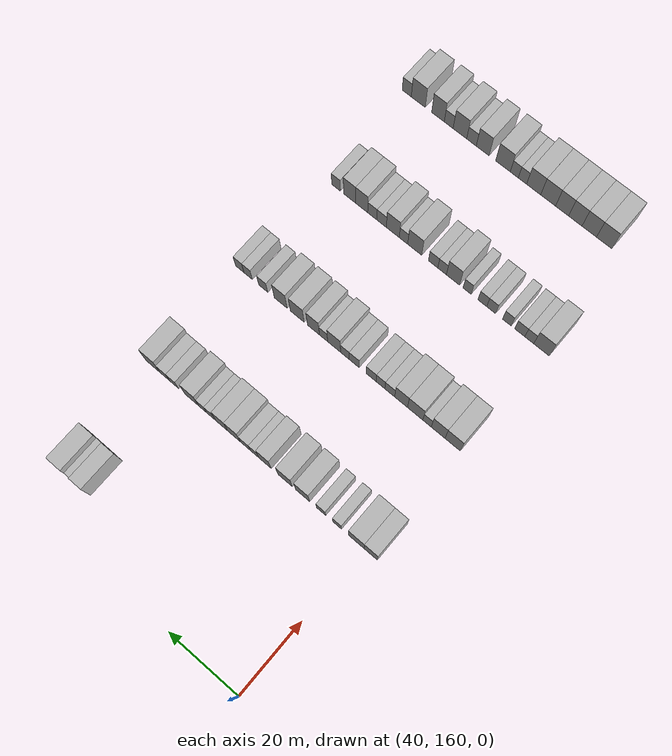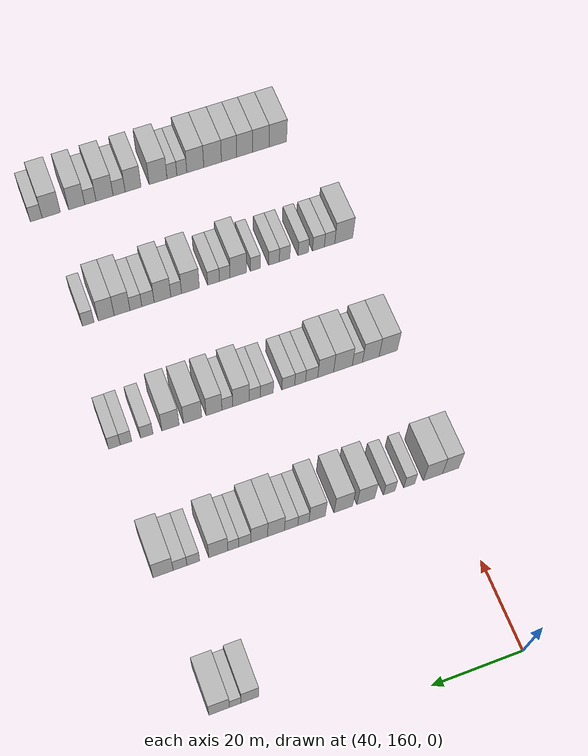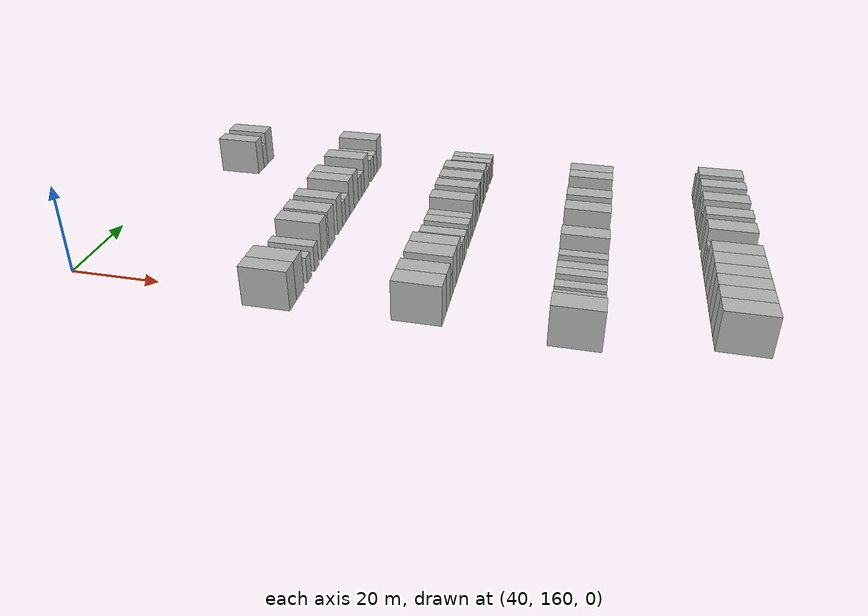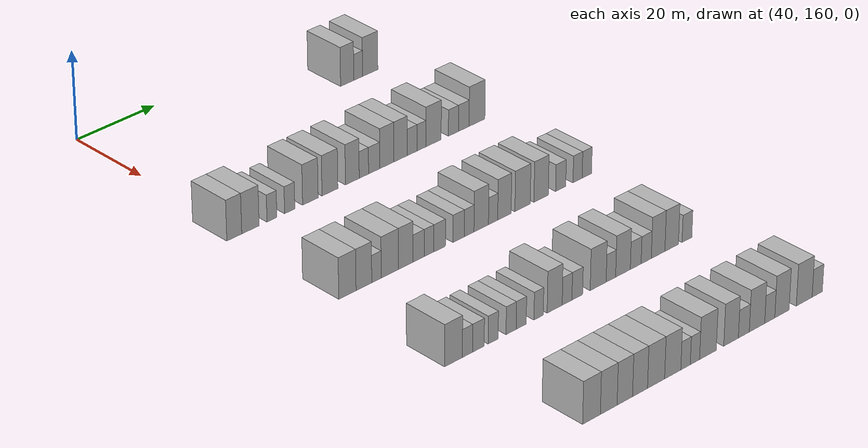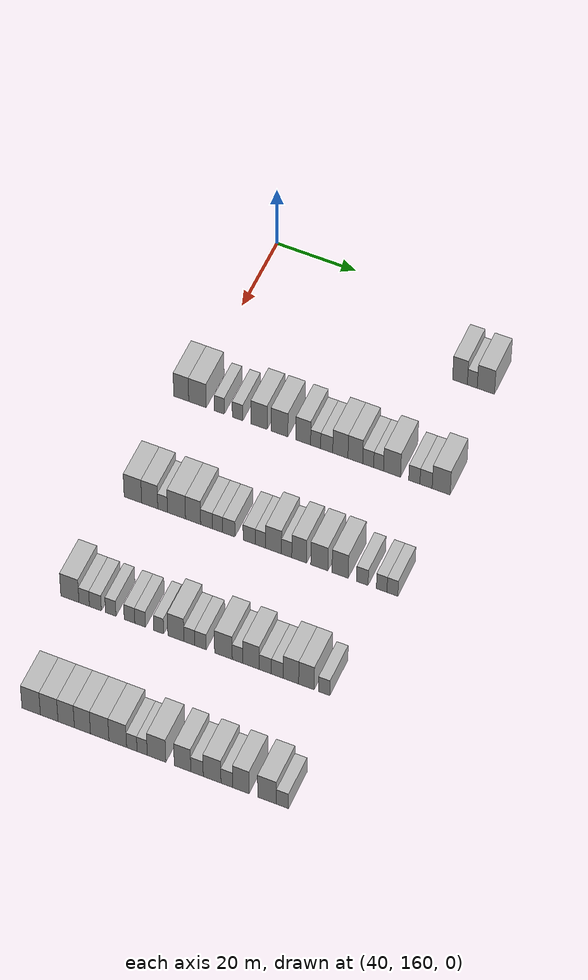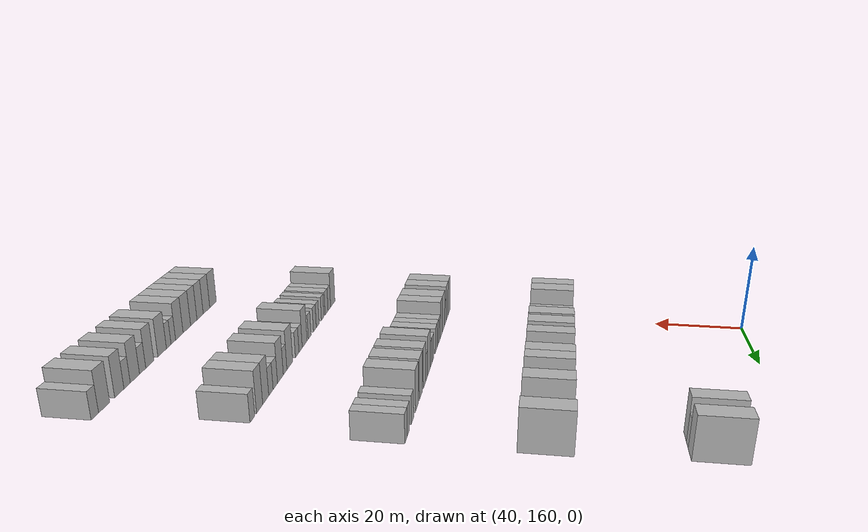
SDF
<sdf version="1.6">
 <world name="default">
  <model name="building_401">
   <static>1</static>
   <pose>55.0000 214.5117 0 0.000000 0.000000 0.000000</pose>
   <link name="link">
    <pose>0 0 4.50 0 0 0</pose>
    <collision name="collision"><geometry><box><size>10.0000 3.6637 9.0000</size></box></geometry></collision>
    <visual name="visual">
     <cast_shadows>0</cast_shadows>
     <geometry><box><size>10.0000 3.6637 9.0000</size></box></geometry>
     <material>
      <script>
       <uri>model://HANNAS_wall/materials/scripts</uri>
       <uri>model://HANNAS_wall/materials/textures</uri>
       <name>vrc/HANNAS_wall</name>
      </script>
     </material>
    </visual>
   </link>
  </model>
  <model name="building_402">
   <static>1</static>
   <pose>55.0000 217.5615 0 0.000000 0.000000 0.000000</pose>
   <link name="link">
    <pose>0 0 3.00 0 0 0</pose>
    <collision name="collision"><geometry><box><size>10.0000 2.4358 6.0000</size></box></geometry></collision>
    <visual name="visual">
     <cast_shadows>0</cast_shadows>
     <geometry><box><size>10.0000 2.4358 6.0000</size></box></geometry>
     <material>
      <script>
       <uri>model://HANNAS_wall/materials/scripts</uri>
       <uri>model://HANNAS_wall/materials/textures</uri>
       <name>vrc/HANNAS_wall</name>
      </script>
     </material>
    </visual>
   </link>
  </model>
  <model name="building_403">
   <static>1</static>
   <pose>55.0000 220.9207 0 0.000000 0.000000 0.000000</pose>
   <link name="link">
    <pose>0 0 4.50 0 0 0</pose>
    <collision name="collision"><geometry><box><size>10.0000 4.2827 9.0000</size></box></geometry></collision>
    <visual name="visual">
     <cast_shadows>0</cast_shadows>
     <geometry><box><size>10.0000 4.2827 9.0000</size></box></geometry>
     <material>
      <script>
       <uri>model://HANNAS_wall/materials/scripts</uri>
       <uri>model://HANNAS_wall/materials/textures</uri>
       <name>vrc/HANNAS_wall</name>
      </script>
     </material>
    </visual>
   </link>
  </model>
  <model name="building_611">
   <static>1</static>
   <pose>85.0000 157.9519 0 0.000000 0.000000 0.000000</pose>
   <link name="link">
    <pose>0 0 4.50 0 0 0</pose>
    <collision name="collision"><geometry><box><size>10.0000 3.7544 9.0000</size></box></geometry></collision>
    <visual name="visual">
     <cast_shadows>0</cast_shadows>
     <geometry><box><size>10.0000 3.7544 9.0000</size></box></geometry>
     <material>
      <script>
       <uri>model://HANNAS_wall/materials/scripts</uri>
       <uri>model://HANNAS_wall/materials/textures</uri>
       <name>vrc/HANNAS_wall</name>
      </script>
     </material>
    </visual>
   </link>
  </model>
  <model name="building_612">
   <static>1</static>
   <pose>85.0000 162.0266 0 0.000000 0.000000 0.000000</pose>
   <link name="link">
    <pose>0 0 4.50 0 0 0</pose>
    <collision name="collision"><geometry><box><size>10.0000 4.3950 9.0000</size></box></geometry></collision>
    <visual name="visual">
     <cast_shadows>0</cast_shadows>
     <geometry><box><size>10.0000 4.3950 9.0000</size></box></geometry>
     <material>
      <script>
       <uri>model://HANNAS_wall/materials/scripts</uri>
       <uri>model://HANNAS_wall/materials/textures</uri>
       <name>vrc/HANNAS_wall</name>
      </script>
     </material>
    </visual>
   </link>
  </model>
  <model name="building_613">
   <static>1</static>
   <pose>85.0000 167.4840 0 0.000000 0.000000 0.000000</pose>
   <link name="link">
    <pose>0 0 3.00 0 0 0</pose>
    <collision name="collision"><geometry><box><size>10.0000 2.5198 6.0000</size></box></geometry></collision>
    <visual name="visual">
     <cast_shadows>0</cast_shadows>
     <geometry><box><size>10.0000 2.5198 6.0000</size></box></geometry>
     <material>
      <script>
       <uri>model://HANNAS_wall/materials/scripts</uri>
       <uri>model://HANNAS_wall/materials/textures</uri>
       <name>vrc/HANNAS_wall</name>
      </script>
     </material>
    </visual>
   </link>
  </model>
  <model name="building_614">
   <static>1</static>
   <pose>85.0000 172.0618 0 0.000000 0.000000 0.000000</pose>
   <link name="link">
    <pose>0 0 3.00 0 0 0</pose>
    <collision name="collision"><geometry><box><size>10.0000 2.6360 6.0000</size></box></geometry></collision>
    <visual name="visual">
     <cast_shadows>0</cast_shadows>
     <geometry><box><size>10.0000 2.6360 6.0000</size></box></geometry>
     <material>
      <script>
       <uri>model://HANNAS_wall/materials/scripts</uri>
       <uri>model://HANNAS_wall/materials/textures</uri>
       <name>vrc/HANNAS_wall</name>
      </script>
     </material>
    </visual>
   </link>
  </model>
  <model name="building_615">
   <static>1</static>
   <pose>85.0000 177.3985 0 0.000000 0.000000 0.000000</pose>
   <link name="link">
    <pose>0 0 4.50 0 0 0</pose>
    <collision name="collision"><geometry><box><size>10.0000 4.0372 9.0000</size></box></geometry></collision>
    <visual name="visual">
     <cast_shadows>0</cast_shadows>
     <geometry><box><size>10.0000 4.0372 9.0000</size></box></geometry>
     <material>
      <script>
       <uri>model://HANNAS_wall/materials/scripts</uri>
       <uri>model://HANNAS_wall/materials/textures</uri>
       <name>vrc/HANNAS_wall</name>
      </script>
     </material>
    </visual>
   </link>
  </model>
  <model name="building_616">
   <static>1</static>
   <pose>85.0000 182.4982 0 0.000000 0.000000 0.000000</pose>
   <link name="link">
    <pose>0 0 4.50 0 0 0</pose>
    <collision name="collision"><geometry><box><size>10.0000 4.1622 9.0000</size></box></geometry></collision>
    <visual name="visual">
     <cast_shadows>0</cast_shadows>
     <geometry><box><size>10.0000 4.1622 9.0000</size></box></geometry>
     <material>
      <script>
       <uri>model://HANNAS_wall/materials/scripts</uri>
       <uri>model://HANNAS_wall/materials/textures</uri>
       <name>vrc/HANNAS_wall</name>
      </script>
     </material>
    </visual>
   </link>
  </model>
  <model name="building_617">
   <static>1</static>
   <pose>85.0000 188.3986 0 0.000000 0.000000 0.000000</pose>
   <link name="link">
    <pose>0 0 4.50 0 0 0</pose>
    <collision name="collision"><geometry><box><size>10.0000 3.6386 9.0000</size></box></geometry></collision>
    <visual name="visual">
     <cast_shadows>0</cast_shadows>
     <geometry><box><size>10.0000 3.6386 9.0000</size></box></geometry>
     <material>
      <script>
       <uri>model://HANNAS_wall/materials/scripts</uri>
       <uri>model://HANNAS_wall/materials/textures</uri>
       <name>vrc/HANNAS_wall</name>
      </script>
     </material>
    </visual>
   </link>
  </model>
  <model name="building_618">
   <static>1</static>
   <pose>85.0000 191.4631 0 0.000000 0.000000 0.000000</pose>
   <link name="link">
    <pose>0 0 3.00 0 0 0</pose>
    <collision name="collision"><geometry><box><size>10.0000 2.4904 6.0000</size></box></geometry></collision>
    <visual name="visual">
     <cast_shadows>0</cast_shadows>
     <geometry><box><size>10.0000 2.4904 6.0000</size></box></geometry>
     <material>
      <script>
       <uri>model://HANNAS_wall/materials/scripts</uri>
       <uri>model://HANNAS_wall/materials/textures</uri>
       <name>vrc/HANNAS_wall</name>
      </script>
     </material>
    </visual>
   </link>
  </model>
  <model name="building_619">
   <static>1</static>
   <pose>85.0000 194.1972 0 0.000000 0.000000 0.000000</pose>
   <link name="link">
    <pose>0 0 3.00 0 0 0</pose>
    <collision name="collision"><geometry><box><size>10.0000 2.9778 6.0000</size></box></geometry></collision>
    <visual name="visual">
     <cast_shadows>0</cast_shadows>
     <geometry><box><size>10.0000 2.9778 6.0000</size></box></geometry>
     <material>
      <script>
       <uri>model://HANNAS_wall/materials/scripts</uri>
       <uri>model://HANNAS_wall/materials/textures</uri>
       <name>vrc/HANNAS_wall</name>
      </script>
     </material>
    </visual>
   </link>
  </model>
  <model name="building_620">
   <static>1</static>
   <pose>85.0000 197.5602 0 0.000000 0.000000 0.000000</pose>
   <link name="link">
    <pose>0 0 4.50 0 0 0</pose>
    <collision name="collision"><geometry><box><size>10.0000 3.7483 9.0000</size></box></geometry></collision>
    <visual name="visual">
     <cast_shadows>0</cast_shadows>
     <geometry><box><size>10.0000 3.7483 9.0000</size></box></geometry>
     <material>
      <script>
       <uri>model://HANNAS_wall/materials/scripts</uri>
       <uri>model://HANNAS_wall/materials/textures</uri>
       <name>vrc/HANNAS_wall</name>
      </script>
     </material>
    </visual>
   </link>
  </model>
  <model name="building_621">
   <static>1</static>
   <pose>85.0000 201.2540 0 0.000000 0.000000 0.000000</pose>
   <link name="link">
    <pose>0 0 4.50 0 0 0</pose>
    <collision name="collision"><geometry><box><size>10.0000 3.6392 9.0000</size></box></geometry></collision>
    <visual name="visual">
     <cast_shadows>0</cast_shadows>
     <geometry><box><size>10.0000 3.6392 9.0000</size></box></geometry>
     <material>
      <script>
       <uri>model://HANNAS_wall/materials/scripts</uri>
       <uri>model://HANNAS_wall/materials/textures</uri>
       <name>vrc/HANNAS_wall</name>
      </script>
     </material>
    </visual>
   </link>
  </model>
  <model name="building_622">
   <static>1</static>
   <pose>85.0000 204.4250 0 0.000000 0.000000 0.000000</pose>
   <link name="link">
    <pose>0 0 3.00 0 0 0</pose>
    <collision name="collision"><geometry><box><size>10.0000 2.7029 6.0000</size></box></geometry></collision>
    <visual name="visual">
     <cast_shadows>0</cast_shadows>
     <geometry><box><size>10.0000 2.7029 6.0000</size></box></geometry>
     <material>
      <script>
       <uri>model://HANNAS_wall/materials/scripts</uri>
       <uri>model://HANNAS_wall/materials/textures</uri>
       <name>vrc/HANNAS_wall</name>
      </script>
     </material>
    </visual>
   </link>
  </model>
  <model name="building_623">
   <static>1</static>
   <pose>85.0000 206.9836 0 0.000000 0.000000 0.000000</pose>
   <link name="link">
    <pose>0 0 3.00 0 0 0</pose>
    <collision name="collision"><geometry><box><size>10.0000 2.4144 6.0000</size></box></geometry></collision>
    <visual name="visual">
     <cast_shadows>0</cast_shadows>
     <geometry><box><size>10.0000 2.4144 6.0000</size></box></geometry>
     <material>
      <script>
       <uri>model://HANNAS_wall/materials/scripts</uri>
       <uri>model://HANNAS_wall/materials/textures</uri>
       <name>vrc/HANNAS_wall</name>
      </script>
     </material>
    </visual>
   </link>
  </model>
  <model name="building_624">
   <static>1</static>
   <pose>85.0000 210.2818 0 0.000000 0.000000 0.000000</pose>
   <link name="link">
    <pose>0 0 4.50 0 0 0</pose>
    <collision name="collision"><geometry><box><size>10.0000 4.1820 9.0000</size></box></geometry></collision>
    <visual name="visual">
     <cast_shadows>0</cast_shadows>
     <geometry><box><size>10.0000 4.1820 9.0000</size></box></geometry>
     <material>
      <script>
       <uri>model://HANNAS_wall/materials/scripts</uri>
       <uri>model://HANNAS_wall/materials/textures</uri>
       <name>vrc/HANNAS_wall</name>
      </script>
     </material>
    </visual>
   </link>
  </model>
  <model name="building_625">
   <static>1</static>
   <pose>85.0000 215.7468 0 0.000000 0.000000 0.000000</pose>
   <link name="link">
    <pose>0 0 3.00 0 0 0</pose>
    <collision name="collision"><geometry><box><size>10.0000 2.7480 6.0000</size></box></geometry></collision>
    <visual name="visual">
     <cast_shadows>0</cast_shadows>
     <geometry><box><size>10.0000 2.7480 6.0000</size></box></geometry>
     <material>
      <script>
       <uri>model://HANNAS_wall/materials/scripts</uri>
       <uri>model://HANNAS_wall/materials/textures</uri>
       <name>vrc/HANNAS_wall</name>
      </script>
     </material>
    </visual>
   </link>
  </model>
  <model name="building_626">
   <static>1</static>
   <pose>85.0000 218.6139 0 0.000000 0.000000 0.000000</pose>
   <link name="link">
    <pose>0 0 3.00 0 0 0</pose>
    <collision name="collision"><geometry><box><size>10.0000 2.9862 6.0000</size></box></geometry></collision>
    <visual name="visual">
     <cast_shadows>0</cast_shadows>
     <geometry><box><size>10.0000 2.9862 6.0000</size></box></geometry>
     <material>
      <script>
       <uri>model://HANNAS_wall/materials/scripts</uri>
       <uri>model://HANNAS_wall/materials/textures</uri>
       <name>vrc/HANNAS_wall</name>
      </script>
     </material>
    </visual>
   </link>
  </model>
  <model name="building_627">
   <static>1</static>
   <pose>85.0000 222.3025 0 0.000000 0.000000 0.000000</pose>
   <link name="link">
    <pose>0 0 4.50 0 0 0</pose>
    <collision name="collision"><geometry><box><size>10.0000 4.3910 9.0000</size></box></geometry></collision>
    <visual name="visual">
     <cast_shadows>0</cast_shadows>
     <geometry><box><size>10.0000 4.3910 9.0000</size></box></geometry>
     <material>
      <script>
       <uri>model://HANNAS_wall/materials/scripts</uri>
       <uri>model://HANNAS_wall/materials/textures</uri>
       <name>vrc/HANNAS_wall</name>
      </script>
     </material>
    </visual>
   </link>
  </model>
  <model name="building_832">
   <static>1</static>
   <pose>115.0000 159.6064 0 0.000000 0.000000 0.000000</pose>
   <link name="link">
    <pose>0 0 4.50 0 0 0</pose>
    <collision name="collision"><geometry><box><size>10.0000 4.3523 9.0000</size></box></geometry></collision>
    <visual name="visual">
     <cast_shadows>0</cast_shadows>
     <geometry><box><size>10.0000 4.3523 9.0000</size></box></geometry>
     <material>
      <script>
       <uri>model://HANNAS_wall/materials/scripts</uri>
       <uri>model://HANNAS_wall/materials/textures</uri>
       <name>vrc/HANNAS_wall</name>
      </script>
     </material>
    </visual>
   </link>
  </model>
  <model name="building_833">
   <static>1</static>
   <pose>115.0000 163.7664 0 0.000000 0.000000 0.000000</pose>
   <link name="link">
    <pose>0 0 4.50 0 0 0</pose>
    <collision name="collision"><geometry><box><size>10.0000 3.9676 9.0000</size></box></geometry></collision>
    <visual name="visual">
     <cast_shadows>0</cast_shadows>
     <geometry><box><size>10.0000 3.9676 9.0000</size></box></geometry>
     <material>
      <script>
       <uri>model://HANNAS_wall/materials/scripts</uri>
       <uri>model://HANNAS_wall/materials/textures</uri>
       <name>vrc/HANNAS_wall</name>
      </script>
     </material>
    </visual>
   </link>
  </model>
  <model name="building_834">
   <static>1</static>
   <pose>115.0000 166.9560 0 0.000000 0.000000 0.000000</pose>
   <link name="link">
    <pose>0 0 3.00 0 0 0</pose>
    <collision name="collision"><geometry><box><size>10.0000 2.4116 6.0000</size></box></geometry></collision>
    <visual name="visual">
     <cast_shadows>0</cast_shadows>
     <geometry><box><size>10.0000 2.4116 6.0000</size></box></geometry>
     <material>
      <script>
       <uri>model://HANNAS_wall/materials/scripts</uri>
       <uri>model://HANNAS_wall/materials/textures</uri>
       <name>vrc/HANNAS_wall</name>
      </script>
     </material>
    </visual>
   </link>
  </model>
  <model name="building_835">
   <static>1</static>
   <pose>115.0000 170.3783 0 0.000000 0.000000 0.000000</pose>
   <link name="link">
    <pose>0 0 4.50 0 0 0</pose>
    <collision name="collision"><geometry><box><size>10.0000 4.4330 9.0000</size></box></geometry></collision>
    <visual name="visual">
     <cast_shadows>0</cast_shadows>
     <geometry><box><size>10.0000 4.4330 9.0000</size></box></geometry>
     <material>
      <script>
       <uri>model://HANNAS_wall/materials/scripts</uri>
       <uri>model://HANNAS_wall/materials/textures</uri>
       <name>vrc/HANNAS_wall</name>
      </script>
     </material>
    </visual>
   </link>
  </model>
  <model name="building_836">
   <static>1</static>
   <pose>115.0000 174.4651 0 0.000000 0.000000 0.000000</pose>
   <link name="link">
    <pose>0 0 4.50 0 0 0</pose>
    <collision name="collision"><geometry><box><size>10.0000 3.7405 9.0000</size></box></geometry></collision>
    <visual name="visual">
     <cast_shadows>0</cast_shadows>
     <geometry><box><size>10.0000 3.7405 9.0000</size></box></geometry>
     <material>
      <script>
       <uri>model://HANNAS_wall/materials/scripts</uri>
       <uri>model://HANNAS_wall/materials/textures</uri>
       <name>vrc/HANNAS_wall</name>
      </script>
     </material>
    </visual>
   </link>
  </model>
  <model name="building_837">
   <static>1</static>
   <pose>115.0000 177.7722 0 0.000000 0.000000 0.000000</pose>
   <link name="link">
    <pose>0 0 3.00 0 0 0</pose>
    <collision name="collision"><geometry><box><size>10.0000 2.8737 6.0000</size></box></geometry></collision>
    <visual name="visual">
     <cast_shadows>0</cast_shadows>
     <geometry><box><size>10.0000 2.8737 6.0000</size></box></geometry>
     <material>
      <script>
       <uri>model://HANNAS_wall/materials/scripts</uri>
       <uri>model://HANNAS_wall/materials/textures</uri>
       <name>vrc/HANNAS_wall</name>
      </script>
     </material>
    </visual>
   </link>
  </model>
  <model name="building_838">
   <static>1</static>
   <pose>115.0000 180.4866 0 0.000000 0.000000 0.000000</pose>
   <link name="link">
    <pose>0 0 3.00 0 0 0</pose>
    <collision name="collision"><geometry><box><size>10.0000 2.5551 6.0000</size></box></geometry></collision>
    <visual name="visual">
     <cast_shadows>0</cast_shadows>
     <geometry><box><size>10.0000 2.5551 6.0000</size></box></geometry>
     <material>
      <script>
       <uri>model://HANNAS_wall/materials/scripts</uri>
       <uri>model://HANNAS_wall/materials/textures</uri>
       <name>vrc/HANNAS_wall</name>
      </script>
     </material>
    </visual>
   </link>
  </model>
  <model name="building_839">
   <static>1</static>
   <pose>115.0000 183.2599 0 0.000000 0.000000 0.000000</pose>
   <link name="link">
    <pose>0 0 3.00 0 0 0</pose>
    <collision name="collision"><geometry><box><size>10.0000 2.9916 6.0000</size></box></geometry></collision>
    <visual name="visual">
     <cast_shadows>0</cast_shadows>
     <geometry><box><size>10.0000 2.9916 6.0000</size></box></geometry>
     <material>
      <script>
       <uri>model://HANNAS_wall/materials/scripts</uri>
       <uri>model://HANNAS_wall/materials/textures</uri>
       <name>vrc/HANNAS_wall</name>
      </script>
     </material>
    </visual>
   </link>
  </model>
  <model name="building_840">
   <static>1</static>
   <pose>115.0000 188.2432 0 0.000000 0.000000 0.000000</pose>
   <link name="link">
    <pose>0 0 3.00 0 0 0</pose>
    <collision name="collision"><geometry><box><size>10.0000 2.9750 6.0000</size></box></geometry></collision>
    <visual name="visual">
     <cast_shadows>0</cast_shadows>
     <geometry><box><size>10.0000 2.9750 6.0000</size></box></geometry>
     <material>
      <script>
       <uri>model://HANNAS_wall/materials/scripts</uri>
       <uri>model://HANNAS_wall/materials/textures</uri>
       <name>vrc/HANNAS_wall</name>
      </script>
     </material>
    </visual>
   </link>
  </model>
  <model name="building_841">
   <static>1</static>
   <pose>115.0000 191.0118 0 0.000000 0.000000 0.000000</pose>
   <link name="link">
    <pose>0 0 3.00 0 0 0</pose>
    <collision name="collision"><geometry><box><size>10.0000 2.5622 6.0000</size></box></geometry></collision>
    <visual name="visual">
     <cast_shadows>0</cast_shadows>
     <geometry><box><size>10.0000 2.5622 6.0000</size></box></geometry>
     <material>
      <script>
       <uri>model://HANNAS_wall/materials/scripts</uri>
       <uri>model://HANNAS_wall/materials/textures</uri>
       <name>vrc/HANNAS_wall</name>
      </script>
     </material>
    </visual>
   </link>
  </model>
  <model name="building_842">
   <static>1</static>
   <pose>115.0000 194.2278 0 0.000000 0.000000 0.000000</pose>
   <link name="link">
    <pose>0 0 4.50 0 0 0</pose>
    <collision name="collision"><geometry><box><size>10.0000 3.8698 9.0000</size></box></geometry></collision>
    <visual name="visual">
     <cast_shadows>0</cast_shadows>
     <geometry><box><size>10.0000 3.8698 9.0000</size></box></geometry>
     <material>
      <script>
       <uri>model://HANNAS_wall/materials/scripts</uri>
       <uri>model://HANNAS_wall/materials/textures</uri>
       <name>vrc/HANNAS_wall</name>
      </script>
     </material>
    </visual>
   </link>
  </model>
  <model name="building_843">
   <static>1</static>
   <pose>115.0000 197.4004 0 0.000000 0.000000 0.000000</pose>
   <link name="link">
    <pose>0 0 3.00 0 0 0</pose>
    <collision name="collision"><geometry><box><size>10.0000 2.4754 6.0000</size></box></geometry></collision>
    <visual name="visual">
     <cast_shadows>0</cast_shadows>
     <geometry><box><size>10.0000 2.4754 6.0000</size></box></geometry>
     <material>
      <script>
       <uri>model://HANNAS_wall/materials/scripts</uri>
       <uri>model://HANNAS_wall/materials/textures</uri>
       <name>vrc/HANNAS_wall</name>
      </script>
     </material>
    </visual>
   </link>
  </model>
  <model name="building_844">
   <static>1</static>
   <pose>115.0000 200.4506 0 0.000000 0.000000 0.000000</pose>
   <link name="link">
    <pose>0 0 4.50 0 0 0</pose>
    <collision name="collision"><geometry><box><size>10.0000 3.6250 9.0000</size></box></geometry></collision>
    <visual name="visual">
     <cast_shadows>0</cast_shadows>
     <geometry><box><size>10.0000 3.6250 9.0000</size></box></geometry>
     <material>
      <script>
       <uri>model://HANNAS_wall/materials/scripts</uri>
       <uri>model://HANNAS_wall/materials/textures</uri>
       <name>vrc/HANNAS_wall</name>
      </script>
     </material>
    </visual>
   </link>
  </model>
  <model name="building_845">
   <static>1</static>
   <pose>115.0000 205.3513 0 0.000000 0.000000 0.000000</pose>
   <link name="link">
    <pose>0 0 4.50 0 0 0</pose>
    <collision name="collision"><geometry><box><size>10.0000 4.1764 9.0000</size></box></geometry></collision>
    <visual name="visual">
     <cast_shadows>0</cast_shadows>
     <geometry><box><size>10.0000 4.1764 9.0000</size></box></geometry>
     <material>
      <script>
       <uri>model://HANNAS_wall/materials/scripts</uri>
       <uri>model://HANNAS_wall/materials/textures</uri>
       <name>vrc/HANNAS_wall</name>
      </script>
     </material>
    </visual>
   </link>
  </model>
  <model name="building_846">
   <static>1</static>
   <pose>115.0000 210.4061 0 0.000000 0.000000 0.000000</pose>
   <link name="link">
    <pose>0 0 4.50 0 0 0</pose>
    <collision name="collision"><geometry><box><size>10.0000 3.9333 9.0000</size></box></geometry></collision>
    <visual name="visual">
     <cast_shadows>0</cast_shadows>
     <geometry><box><size>10.0000 3.9333 9.0000</size></box></geometry>
     <material>
      <script>
       <uri>model://HANNAS_wall/materials/scripts</uri>
       <uri>model://HANNAS_wall/materials/textures</uri>
       <name>vrc/HANNAS_wall</name>
      </script>
     </material>
    </visual>
   </link>
  </model>
  <model name="building_847">
   <static>1</static>
   <pose>115.0000 215.7771 0 0.000000 0.000000 0.000000</pose>
   <link name="link">
    <pose>0 0 3.00 0 0 0</pose>
    <collision name="collision"><geometry><box><size>10.0000 2.8086 6.0000</size></box></geometry></collision>
    <visual name="visual">
     <cast_shadows>0</cast_shadows>
     <geometry><box><size>10.0000 2.8086 6.0000</size></box></geometry>
     <material>
      <script>
       <uri>model://HANNAS_wall/materials/scripts</uri>
       <uri>model://HANNAS_wall/materials/textures</uri>
       <name>vrc/HANNAS_wall</name>
      </script>
     </material>
    </visual>
   </link>
  </model>
  <model name="building_848">
   <static>1</static>
   <pose>115.0000 220.4615 0 0.000000 0.000000 0.000000</pose>
   <link name="link">
    <pose>0 0 3.00 0 0 0</pose>
    <collision name="collision"><geometry><box><size>10.0000 2.5602 6.0000</size></box></geometry></collision>
    <visual name="visual">
     <cast_shadows>0</cast_shadows>
     <geometry><box><size>10.0000 2.5602 6.0000</size></box></geometry>
     <material>
      <script>
       <uri>model://HANNAS_wall/materials/scripts</uri>
       <uri>model://HANNAS_wall/materials/textures</uri>
       <name>vrc/HANNAS_wall</name>
      </script>
     </material>
    </visual>
   </link>
  </model>
  <model name="building_849">
   <static>1</static>
   <pose>115.0000 223.0526 0 0.000000 0.000000 0.000000</pose>
   <link name="link">
    <pose>0 0 3.00 0 0 0</pose>
    <collision name="collision"><geometry><box><size>10.0000 2.6220 6.0000</size></box></geometry></collision>
    <visual name="visual">
     <cast_shadows>0</cast_shadows>
     <geometry><box><size>10.0000 2.6220 6.0000</size></box></geometry>
     <material>
      <script>
       <uri>model://HANNAS_wall/materials/scripts</uri>
       <uri>model://HANNAS_wall/materials/textures</uri>
       <name>vrc/HANNAS_wall</name>
      </script>
     </material>
    </visual>
   </link>
  </model>
  <model name="building_1072">
   <static>1</static>
   <pose>145.0000 158.0233 0 0.000000 0.000000 0.000000</pose>
   <link name="link">
    <pose>0 0 4.50 0 0 0</pose>
    <collision name="collision"><geometry><box><size>10.0000 4.4447 9.0000</size></box></geometry></collision>
    <visual name="visual">
     <cast_shadows>0</cast_shadows>
     <geometry><box><size>10.0000 4.4447 9.0000</size></box></geometry>
     <material>
      <script>
       <uri>model://HANNAS_wall/materials/scripts</uri>
       <uri>model://HANNAS_wall/materials/textures</uri>
       <name>vrc/HANNAS_wall</name>
      </script>
     </material>
    </visual>
   </link>
  </model>
  <model name="building_1073">
   <static>1</static>
   <pose>145.0000 161.5259 0 0.000000 0.000000 0.000000</pose>
   <link name="link">
    <pose>0 0 3.00 0 0 0</pose>
    <collision name="collision"><geometry><box><size>10.0000 2.5606 6.0000</size></box></geometry></collision>
    <visual name="visual">
     <cast_shadows>0</cast_shadows>
     <geometry><box><size>10.0000 2.5606 6.0000</size></box></geometry>
     <material>
      <script>
       <uri>model://HANNAS_wall/materials/scripts</uri>
       <uri>model://HANNAS_wall/materials/textures</uri>
       <name>vrc/HANNAS_wall</name>
      </script>
     </material>
    </visual>
   </link>
  </model>
  <model name="building_1074">
   <static>1</static>
   <pose>145.0000 164.2708 0 0.000000 0.000000 0.000000</pose>
   <link name="link">
    <pose>0 0 3.00 0 0 0</pose>
    <collision name="collision"><geometry><box><size>10.0000 2.9294 6.0000</size></box></geometry></collision>
    <visual name="visual">
     <cast_shadows>0</cast_shadows>
     <geometry><box><size>10.0000 2.9294 6.0000</size></box></geometry>
     <material>
      <script>
       <uri>model://HANNAS_wall/materials/scripts</uri>
       <uri>model://HANNAS_wall/materials/textures</uri>
       <name>vrc/HANNAS_wall</name>
      </script>
     </material>
    </visual>
   </link>
  </model>
  <model name="building_1075">
   <static>1</static>
   <pose>145.0000 168.0119 0 0.000000 0.000000 0.000000</pose>
   <link name="link">
    <pose>0 0 3.00 0 0 0</pose>
    <collision name="collision"><geometry><box><size>10.0000 2.5528 6.0000</size></box></geometry></collision>
    <visual name="visual">
     <cast_shadows>0</cast_shadows>
     <geometry><box><size>10.0000 2.5528 6.0000</size></box></geometry>
     <material>
      <script>
       <uri>model://HANNAS_wall/materials/scripts</uri>
       <uri>model://HANNAS_wall/materials/textures</uri>
       <name>vrc/HANNAS_wall</name>
      </script>
     </material>
    </visual>
   </link>
  </model>
  <model name="building_1076">
   <static>1</static>
   <pose>145.0000 172.5833 0 0.000000 0.000000 0.000000</pose>
   <link name="link">
    <pose>0 0 3.00 0 0 0</pose>
    <collision name="collision"><geometry><box><size>10.0000 2.5899 6.0000</size></box></geometry></collision>
    <visual name="visual">
     <cast_shadows>0</cast_shadows>
     <geometry><box><size>10.0000 2.5899 6.0000</size></box></geometry>
     <material>
      <script>
       <uri>model://HANNAS_wall/materials/scripts</uri>
       <uri>model://HANNAS_wall/materials/textures</uri>
       <name>vrc/HANNAS_wall</name>
      </script>
     </material>
    </visual>
   </link>
  </model>
  <model name="building_1077">
   <static>1</static>
   <pose>145.0000 175.1761 0 0.000000 0.000000 0.000000</pose>
   <link name="link">
    <pose>0 0 3.00 0 0 0</pose>
    <collision name="collision"><geometry><box><size>10.0000 2.5956 6.0000</size></box></geometry></collision>
    <visual name="visual">
     <cast_shadows>0</cast_shadows>
     <geometry><box><size>10.0000 2.5956 6.0000</size></box></geometry>
     <material>
      <script>
       <uri>model://HANNAS_wall/materials/scripts</uri>
       <uri>model://HANNAS_wall/materials/textures</uri>
       <name>vrc/HANNAS_wall</name>
      </script>
     </material>
    </visual>
   </link>
  </model>
  <model name="building_1078">
   <static>1</static>
   <pose>145.0000 179.6835 0 0.000000 0.000000 0.000000</pose>
   <link name="link">
    <pose>0 0 3.00 0 0 0</pose>
    <collision name="collision"><geometry><box><size>10.0000 2.4192 6.0000</size></box></geometry></collision>
    <visual name="visual">
     <cast_shadows>0</cast_shadows>
     <geometry><box><size>10.0000 2.4192 6.0000</size></box></geometry>
     <material>
      <script>
       <uri>model://HANNAS_wall/materials/scripts</uri>
       <uri>model://HANNAS_wall/materials/textures</uri>
       <name>vrc/HANNAS_wall</name>
      </script>
     </material>
    </visual>
   </link>
  </model>
  <model name="building_1079">
   <static>1</static>
   <pose>145.0000 183.8589 0 0.000000 0.000000 0.000000</pose>
   <link name="link">
    <pose>0 0 4.50 0 0 0</pose>
    <collision name="collision"><geometry><box><size>10.0000 3.9317 9.0000</size></box></geometry></collision>
    <visual name="visual">
     <cast_shadows>0</cast_shadows>
     <geometry><box><size>10.0000 3.9317 9.0000</size></box></geometry>
     <material>
      <script>
       <uri>model://HANNAS_wall/materials/scripts</uri>
       <uri>model://HANNAS_wall/materials/textures</uri>
       <name>vrc/HANNAS_wall</name>
      </script>
     </material>
    </visual>
   </link>
  </model>
  <model name="building_1080">
   <static>1</static>
   <pose>145.0000 187.1050 0 0.000000 0.000000 0.000000</pose>
   <link name="link">
    <pose>0 0 3.00 0 0 0</pose>
    <collision name="collision"><geometry><box><size>10.0000 2.5604 6.0000</size></box></geometry></collision>
    <visual name="visual">
     <cast_shadows>0</cast_shadows>
     <geometry><box><size>10.0000 2.5604 6.0000</size></box></geometry>
     <material>
      <script>
       <uri>model://HANNAS_wall/materials/scripts</uri>
       <uri>model://HANNAS_wall/materials/textures</uri>
       <name>vrc/HANNAS_wall</name>
      </script>
     </material>
    </visual>
   </link>
  </model>
  <model name="building_1081">
   <static>1</static>
   <pose>145.0000 189.7967 0 0.000000 0.000000 0.000000</pose>
   <link name="link">
    <pose>0 0 3.00 0 0 0</pose>
    <collision name="collision"><geometry><box><size>10.0000 2.8230 6.0000</size></box></geometry></collision>
    <visual name="visual">
     <cast_shadows>0</cast_shadows>
     <geometry><box><size>10.0000 2.8230 6.0000</size></box></geometry>
     <material>
      <script>
       <uri>model://HANNAS_wall/materials/scripts</uri>
       <uri>model://HANNAS_wall/materials/textures</uri>
       <name>vrc/HANNAS_wall</name>
      </script>
     </material>
    </visual>
   </link>
  </model>
  <model name="building_1082">
   <static>1</static>
   <pose>145.0000 195.3401 0 0.000000 0.000000 0.000000</pose>
   <link name="link">
    <pose>0 0 4.50 0 0 0</pose>
    <collision name="collision"><geometry><box><size>10.0000 4.2638 9.0000</size></box></geometry></collision>
    <visual name="visual">
     <cast_shadows>0</cast_shadows>
     <geometry><box><size>10.0000 4.2638 9.0000</size></box></geometry>
     <material>
      <script>
       <uri>model://HANNAS_wall/materials/scripts</uri>
       <uri>model://HANNAS_wall/materials/textures</uri>
       <name>vrc/HANNAS_wall</name>
      </script>
     </material>
    </visual>
   </link>
  </model>
  <model name="building_1083">
   <static>1</static>
   <pose>145.0000 198.7444 0 0.000000 0.000000 0.000000</pose>
   <link name="link">
    <pose>0 0 3.00 0 0 0</pose>
    <collision name="collision"><geometry><box><size>10.0000 2.5447 6.0000</size></box></geometry></collision>
    <visual name="visual">
     <cast_shadows>0</cast_shadows>
     <geometry><box><size>10.0000 2.5447 6.0000</size></box></geometry>
     <material>
      <script>
       <uri>model://HANNAS_wall/materials/scripts</uri>
       <uri>model://HANNAS_wall/materials/textures</uri>
       <name>vrc/HANNAS_wall</name>
      </script>
     </material>
    </visual>
   </link>
  </model>
  <model name="building_1084">
   <static>1</static>
   <pose>145.0000 201.9946 0 0.000000 0.000000 0.000000</pose>
   <link name="link">
    <pose>0 0 4.50 0 0 0</pose>
    <collision name="collision"><geometry><box><size>10.0000 3.9556 9.0000</size></box></geometry></collision>
    <visual name="visual">
     <cast_shadows>0</cast_shadows>
     <geometry><box><size>10.0000 3.9556 9.0000</size></box></geometry>
     <material>
      <script>
       <uri>model://HANNAS_wall/materials/scripts</uri>
       <uri>model://HANNAS_wall/materials/textures</uri>
       <name>vrc/HANNAS_wall</name>
      </script>
     </material>
    </visual>
   </link>
  </model>
  <model name="building_1085">
   <static>1</static>
   <pose>145.0000 205.4334 0 0.000000 0.000000 0.000000</pose>
   <link name="link">
    <pose>0 0 3.00 0 0 0</pose>
    <collision name="collision"><geometry><box><size>10.0000 2.9219 6.0000</size></box></geometry></collision>
    <visual name="visual">
     <cast_shadows>0</cast_shadows>
     <geometry><box><size>10.0000 2.9219 6.0000</size></box></geometry>
     <material>
      <script>
       <uri>model://HANNAS_wall/materials/scripts</uri>
       <uri>model://HANNAS_wall/materials/textures</uri>
       <name>vrc/HANNAS_wall</name>
      </script>
     </material>
    </visual>
   </link>
  </model>
  <model name="building_1086">
   <static>1</static>
   <pose>145.0000 208.2895 0 0.000000 0.000000 0.000000</pose>
   <link name="link">
    <pose>0 0 3.00 0 0 0</pose>
    <collision name="collision"><geometry><box><size>10.0000 2.7905 6.0000</size></box></geometry></collision>
    <visual name="visual">
     <cast_shadows>0</cast_shadows>
     <geometry><box><size>10.0000 2.7905 6.0000</size></box></geometry>
     <material>
      <script>
       <uri>model://HANNAS_wall/materials/scripts</uri>
       <uri>model://HANNAS_wall/materials/textures</uri>
       <name>vrc/HANNAS_wall</name>
      </script>
     </material>
    </visual>
   </link>
  </model>
  <model name="building_1087">
   <static>1</static>
   <pose>145.0000 211.5451 0 0.000000 0.000000 0.000000</pose>
   <link name="link">
    <pose>0 0 4.50 0 0 0</pose>
    <collision name="collision"><geometry><box><size>10.0000 3.7206 9.0000</size></box></geometry></collision>
    <visual name="visual">
     <cast_shadows>0</cast_shadows>
     <geometry><box><size>10.0000 3.7206 9.0000</size></box></geometry>
     <material>
      <script>
       <uri>model://HANNAS_wall/materials/scripts</uri>
       <uri>model://HANNAS_wall/materials/textures</uri>
       <name>vrc/HANNAS_wall</name>
      </script>
     </material>
    </visual>
   </link>
  </model>
  <model name="building_1088">
   <static>1</static>
   <pose>145.0000 215.2692 0 0.000000 0.000000 0.000000</pose>
   <link name="link">
    <pose>0 0 4.50 0 0 0</pose>
    <collision name="collision"><geometry><box><size>10.0000 3.7278 9.0000</size></box></geometry></collision>
    <visual name="visual">
     <cast_shadows>0</cast_shadows>
     <geometry><box><size>10.0000 3.7278 9.0000</size></box></geometry>
     <material>
      <script>
       <uri>model://HANNAS_wall/materials/scripts</uri>
       <uri>model://HANNAS_wall/materials/textures</uri>
       <name>vrc/HANNAS_wall</name>
      </script>
     </material>
    </visual>
   </link>
  </model>
  <model name="building_1089">
   <static>1</static>
   <pose>145.0000 219.4959 0 0.000000 0.000000 0.000000</pose>
   <link name="link">
    <pose>0 0 3.00 0 0 0</pose>
    <collision name="collision"><geometry><box><size>10.0000 2.7255 6.0000</size></box></geometry></collision>
    <visual name="visual">
     <cast_shadows>0</cast_shadows>
     <geometry><box><size>10.0000 2.7255 6.0000</size></box></geometry>
     <material>
      <script>
       <uri>model://HANNAS_wall/materials/scripts</uri>
       <uri>model://HANNAS_wall/materials/textures</uri>
       <name>vrc/HANNAS_wall</name>
      </script>
     </material>
    </visual>
   </link>
  </model>
  <model name="building_1300">
   <static>1</static>
   <pose>175.0000 162.7814 0 0.000000 0.000000 0.000000</pose>
   <link name="link">
    <pose>0 0 4.50 0 0 0</pose>
    <collision name="collision"><geometry><box><size>10.0000 4.4599 9.0000</size></box></geometry></collision>
    <visual name="visual">
     <cast_shadows>0</cast_shadows>
     <geometry><box><size>10.0000 4.4599 9.0000</size></box></geometry>
     <material>
      <script>
       <uri>model://HANNAS_wall/materials/scripts</uri>
       <uri>model://HANNAS_wall/materials/textures</uri>
       <name>vrc/HANNAS_wall</name>
      </script>
     </material>
    </visual>
   </link>
  </model>
  <model name="building_1301">
   <static>1</static>
   <pose>175.0000 167.1324 0 0.000000 0.000000 0.000000</pose>
   <link name="link">
    <pose>0 0 4.50 0 0 0</pose>
    <collision name="collision"><geometry><box><size>10.0000 4.2420 9.0000</size></box></geometry></collision>
    <visual name="visual">
     <cast_shadows>0</cast_shadows>
     <geometry><box><size>10.0000 4.2420 9.0000</size></box></geometry>
     <material>
      <script>
       <uri>model://HANNAS_wall/materials/scripts</uri>
       <uri>model://HANNAS_wall/materials/textures</uri>
       <name>vrc/HANNAS_wall</name>
      </script>
     </material>
    </visual>
   </link>
  </model>
  <model name="building_1302">
   <static>1</static>
   <pose>175.0000 171.2253 0 0.000000 0.000000 0.000000</pose>
   <link name="link">
    <pose>0 0 4.50 0 0 0</pose>
    <collision name="collision"><geometry><box><size>10.0000 3.9438 9.0000</size></box></geometry></collision>
    <visual name="visual">
     <cast_shadows>0</cast_shadows>
     <geometry><box><size>10.0000 3.9438 9.0000</size></box></geometry>
     <material>
      <script>
       <uri>model://HANNAS_wall/materials/scripts</uri>
       <uri>model://HANNAS_wall/materials/textures</uri>
       <name>vrc/HANNAS_wall</name>
      </script>
     </material>
    </visual>
   </link>
  </model>
  <model name="building_1303">
   <static>1</static>
   <pose>175.0000 175.1260 0 0.000000 0.000000 0.000000</pose>
   <link name="link">
    <pose>0 0 4.50 0 0 0</pose>
    <collision name="collision"><geometry><box><size>10.0000 3.8577 9.0000</size></box></geometry></collision>
    <visual name="visual">
     <cast_shadows>0</cast_shadows>
     <geometry><box><size>10.0000 3.8577 9.0000</size></box></geometry>
     <material>
      <script>
       <uri>model://HANNAS_wall/materials/scripts</uri>
       <uri>model://HANNAS_wall/materials/textures</uri>
       <name>vrc/HANNAS_wall</name>
      </script>
     </material>
    </visual>
   </link>
  </model>
  <model name="building_1304">
   <static>1</static>
   <pose>175.0000 179.2700 0 0.000000 0.000000 0.000000</pose>
   <link name="link">
    <pose>0 0 4.50 0 0 0</pose>
    <collision name="collision"><geometry><box><size>10.0000 4.4303 9.0000</size></box></geometry></collision>
    <visual name="visual">
     <cast_shadows>0</cast_shadows>
     <geometry><box><size>10.0000 4.4303 9.0000</size></box></geometry>
     <material>
      <script>
       <uri>model://HANNAS_wall/materials/scripts</uri>
       <uri>model://HANNAS_wall/materials/textures</uri>
       <name>vrc/HANNAS_wall</name>
      </script>
     </material>
    </visual>
   </link>
  </model>
  <model name="building_1305">
   <static>1</static>
   <pose>175.0000 183.6039 0 0.000000 0.000000 0.000000</pose>
   <link name="link">
    <pose>0 0 4.50 0 0 0</pose>
    <collision name="collision"><geometry><box><size>10.0000 4.2373 9.0000</size></box></geometry></collision>
    <visual name="visual">
     <cast_shadows>0</cast_shadows>
     <geometry><box><size>10.0000 4.2373 9.0000</size></box></geometry>
     <material>
      <script>
       <uri>model://HANNAS_wall/materials/scripts</uri>
       <uri>model://HANNAS_wall/materials/textures</uri>
       <name>vrc/HANNAS_wall</name>
      </script>
     </material>
    </visual>
   </link>
  </model>
  <model name="building_1306">
   <static>1</static>
   <pose>175.0000 186.9654 0 0.000000 0.000000 0.000000</pose>
   <link name="link">
    <pose>0 0 3.00 0 0 0</pose>
    <collision name="collision"><geometry><box><size>10.0000 2.4858 6.0000</size></box></geometry></collision>
    <visual name="visual">
     <cast_shadows>0</cast_shadows>
     <geometry><box><size>10.0000 2.4858 6.0000</size></box></geometry>
     <material>
      <script>
       <uri>model://HANNAS_wall/materials/scripts</uri>
       <uri>model://HANNAS_wall/materials/textures</uri>
       <name>vrc/HANNAS_wall</name>
      </script>
     </material>
    </visual>
   </link>
  </model>
  <model name="building_1307">
   <static>1</static>
   <pose>175.0000 189.4296 0 0.000000 0.000000 0.000000</pose>
   <link name="link">
    <pose>0 0 3.00 0 0 0</pose>
    <collision name="collision"><geometry><box><size>10.0000 2.4426 6.0000</size></box></geometry></collision>
    <visual name="visual">
     <cast_shadows>0</cast_shadows>
     <geometry><box><size>10.0000 2.4426 6.0000</size></box></geometry>
     <material>
      <script>
       <uri>model://HANNAS_wall/materials/scripts</uri>
       <uri>model://HANNAS_wall/materials/textures</uri>
       <name>vrc/HANNAS_wall</name>
      </script>
     </material>
    </visual>
   </link>
  </model>
  <model name="building_1308">
   <static>1</static>
   <pose>175.0000 192.8683 0 0.000000 0.000000 0.000000</pose>
   <link name="link">
    <pose>0 0 4.50 0 0 0</pose>
    <collision name="collision"><geometry><box><size>10.0000 4.4346 9.0000</size></box></geometry></collision>
    <visual name="visual">
     <cast_shadows>0</cast_shadows>
     <geometry><box><size>10.0000 4.4346 9.0000</size></box></geometry>
     <material>
      <script>
       <uri>model://HANNAS_wall/materials/scripts</uri>
       <uri>model://HANNAS_wall/materials/textures</uri>
       <name>vrc/HANNAS_wall</name>
      </script>
     </material>
    </visual>
   </link>
  </model>
  <model name="building_1309">
   <static>1</static>
   <pose>175.0000 199.0488 0 0.000000 0.000000 0.000000</pose>
   <link name="link">
    <pose>0 0 4.50 0 0 0</pose>
    <collision name="collision"><geometry><box><size>10.0000 3.9265 9.0000</size></box></geometry></collision>
    <visual name="visual">
     <cast_shadows>0</cast_shadows>
     <geometry><box><size>10.0000 3.9265 9.0000</size></box></geometry>
     <material>
      <script>
       <uri>model://HANNAS_wall/materials/scripts</uri>
       <uri>model://HANNAS_wall/materials/textures</uri>
       <name>vrc/HANNAS_wall</name>
      </script>
     </material>
    </visual>
   </link>
  </model>
  <model name="building_1310">
   <static>1</static>
   <pose>175.0000 202.4873 0 0.000000 0.000000 0.000000</pose>
   <link name="link">
    <pose>0 0 3.00 0 0 0</pose>
    <collision name="collision"><geometry><box><size>10.0000 2.9503 6.0000</size></box></geometry></collision>
    <visual name="visual">
     <cast_shadows>0</cast_shadows>
     <geometry><box><size>10.0000 2.9503 6.0000</size></box></geometry>
     <material>
      <script>
       <uri>model://HANNAS_wall/materials/scripts</uri>
       <uri>model://HANNAS_wall/materials/textures</uri>
       <name>vrc/HANNAS_wall</name>
      </script>
     </material>
    </visual>
   </link>
  </model>
  <model name="building_1311">
   <static>1</static>
   <pose>175.0000 206.0596 0 0.000000 0.000000 0.000000</pose>
   <link name="link">
    <pose>0 0 4.50 0 0 0</pose>
    <collision name="collision"><geometry><box><size>10.0000 4.1943 9.0000</size></box></geometry></collision>
    <visual name="visual">
     <cast_shadows>0</cast_shadows>
     <geometry><box><size>10.0000 4.1943 9.0000</size></box></geometry>
     <material>
      <script>
       <uri>model://HANNAS_wall/materials/scripts</uri>
       <uri>model://HANNAS_wall/materials/textures</uri>
       <name>vrc/HANNAS_wall</name>
      </script>
     </material>
    </visual>
   </link>
  </model>
  <model name="building_1312">
   <static>1</static>
   <pose>175.0000 209.5315 0 0.000000 0.000000 0.000000</pose>
   <link name="link">
    <pose>0 0 3.00 0 0 0</pose>
    <collision name="collision"><geometry><box><size>10.0000 2.7496 6.0000</size></box></geometry></collision>
    <visual name="visual">
     <cast_shadows>0</cast_shadows>
     <geometry><box><size>10.0000 2.7496 6.0000</size></box></geometry>
     <material>
      <script>
       <uri>model://HANNAS_wall/materials/scripts</uri>
       <uri>model://HANNAS_wall/materials/textures</uri>
       <name>vrc/HANNAS_wall</name>
      </script>
     </material>
    </visual>
   </link>
  </model>
  <model name="building_1313">
   <static>1</static>
   <pose>175.0000 212.8687 0 0.000000 0.000000 0.000000</pose>
   <link name="link">
    <pose>0 0 4.50 0 0 0</pose>
    <collision name="collision"><geometry><box><size>10.0000 3.9249 9.0000</size></box></geometry></collision>
    <visual name="visual">
     <cast_shadows>0</cast_shadows>
     <geometry><box><size>10.0000 3.9249 9.0000</size></box></geometry>
     <material>
      <script>
       <uri>model://HANNAS_wall/materials/scripts</uri>
       <uri>model://HANNAS_wall/materials/textures</uri>
       <name>vrc/HANNAS_wall</name>
      </script>
     </material>
    </visual>
   </link>
  </model>
  <model name="building_1314">
   <static>1</static>
   <pose>175.0000 219.0350 0 0.000000 0.000000 0.000000</pose>
   <link name="link">
    <pose>0 0 4.50 0 0 0</pose>
    <collision name="collision"><geometry><box><size>10.0000 4.4078 9.0000</size></box></geometry></collision>
    <visual name="visual">
     <cast_shadows>0</cast_shadows>
     <geometry><box><size>10.0000 4.4078 9.0000</size></box></geometry>
     <material>
      <script>
       <uri>model://HANNAS_wall/materials/scripts</uri>
       <uri>model://HANNAS_wall/materials/textures</uri>
       <name>vrc/HANNAS_wall</name>
      </script>
     </material>
    </visual>
   </link>
  </model>
  <model name="building_1315">
   <static>1</static>
   <pose>175.0000 222.6664 0 0.000000 0.000000 0.000000</pose>
   <link name="link">
    <pose>0 0 3.00 0 0 0</pose>
    <collision name="collision"><geometry><box><size>10.0000 2.8550 6.0000</size></box></geometry></collision>
    <visual name="visual">
     <cast_shadows>0</cast_shadows>
     <geometry><box><size>10.0000 2.8550 6.0000</size></box></geometry>
     <material>
      <script>
       <uri>model://HANNAS_wall/materials/scripts</uri>
       <uri>model://HANNAS_wall/materials/textures</uri>
       <name>vrc/HANNAS_wall</name>
      </script>
     </material>
    </visual>
   </link>
  </model>
 </world>
</sdf>
